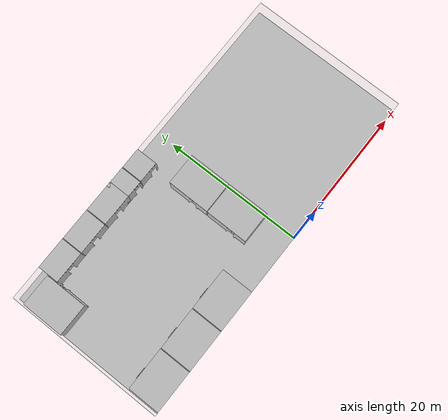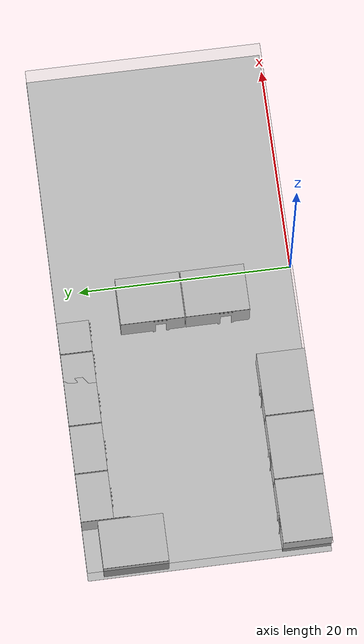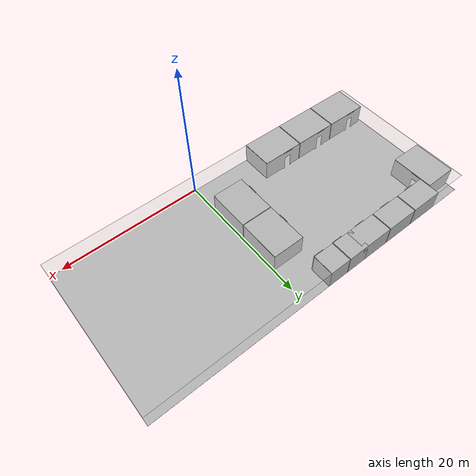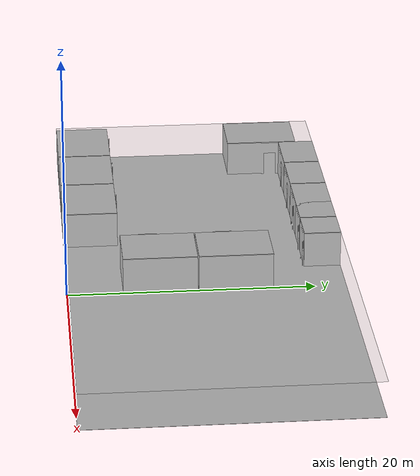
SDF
<sdf version="1.6">
 <world name="default">
  <model name="ceiling">
   <pose>-2.9699999999999998
        11.25
        3.0
        0
        3.141592653589793
        0</pose>
   <static>true</static>
   <link name="link">
    <visual name="visual">
     <geometry><plane><normal>0 0 1</normal><size>49.5 22.5</size></plane></geometry>
     <material>
      <script>
       <uri>file://media/materials/scripts/</uri>
       <uri>file://media/materials/textures/</uri>
       <name>ServiceSim/Ceiling</name>
      </script>
     </material>
    </visual>
   </link>
  </model>
  <model name="floor">
   <pose>-2.9699999999999998
        11.25
        -0.001
        0
        0
        0</pose>
   <static>true</static>
   <link name="link">
    <visual name="visual">
     <geometry><plane><normal>0 0 1</normal><size>49.5 22.5</size></plane></geometry>
     <material>
      <script>
       <uri>file://media/materials/scripts/</uri>
       <uri>file://media/materials/textures/</uri>
       <name>ServiceSim/Hallway</name>
      </script>
     </material>
    </visual>
    <collision name="collision">
     <geometry><plane><normal>0 0 1</normal><size>49.5 22.5</size></plane></geometry>
     <surface><friction><ode><mu>1</mu><mu2>1</mu2></ode></friction></surface>
    </collision>
   </link>
  </model>
  <model name="PrivateMeetingRoomA">
   <static>true</static>
   <pose>-4.6
    7.5
    0
    0
    0
    1.5707963267948966</pose>
   <link name="link">
    <collision name="right_of_door">
     <pose>1.3800000000000001
        0.05
        1.5
        0
        0
        0</pose>
     <geometry><box><size>3.24
            0.1
            3.0</size></box></geometry>
    </collision>
    <collision name="left_of_door">
     <pose>-2.13
        0.05
        1.5
        0
        0
        0</pose>
     <geometry><box><size>1.74
            0.1
            3.0</size></box></geometry>
    </collision>
    <collision name="right">
     <pose>3.05
        -2.25
        1.5
        0
        0
        0</pose>
     <geometry><box><size>0.1
            4.5
            3.0</size></box></geometry>
    </collision>
    <collision name="left">
     <pose>-3.05
        -2.25
        1.5
        0
        0
        0</pose>
     <geometry><box><size>0.1
            4.5
            3.0</size></box></geometry>
    </collision>
    <collision name="back">
     <pose>0.0
        -4.55
        1.5
        0
        0
        0</pose>
     <geometry><box><size>6.0
            0.1
            3.0</size></box></geometry>
    </collision>
    <visual name="visual">
     <geometry>
      <mesh><uri>file://media/meshes/meeting_room_small.obj</uri><scale>0.01 0.01 0.01</scale></mesh>
     </geometry>
    </visual>
    <visual name="floor_-1_-2">
     <pose>-1.5
          -3.0
          0
          0
          0
          0</pose>
     <geometry><mesh><uri>file://media/meshes/carpet.obj</uri><scale>0.01 0.01 0.01</scale></mesh></geometry>
    </visual>
    <visual name="floor_-1_-1">
     <pose>-1.5
          -1.5
          0
          0
          0
          0</pose>
     <geometry><mesh><uri>file://media/meshes/carpet.obj</uri><scale>0.01 0.01 0.01</scale></mesh></geometry>
    </visual>
    <visual name="floor_-1_0">
     <pose>-1.5
          0.0
          0
          0
          0
          0</pose>
     <geometry><mesh><uri>file://media/meshes/carpet.obj</uri><scale>0.01 0.01 0.01</scale></mesh></geometry>
    </visual>
    <visual name="floor_0_-2">
     <pose>0.0
          -3.0
          0
          0
          0
          0</pose>
     <geometry><mesh><uri>file://media/meshes/carpet.obj</uri><scale>0.01 0.01 0.01</scale></mesh></geometry>
    </visual>
    <visual name="floor_0_-1">
     <pose>0.0
          -1.5
          0
          0
          0
          0</pose>
     <geometry><mesh><uri>file://media/meshes/carpet.obj</uri><scale>0.01 0.01 0.01</scale></mesh></geometry>
    </visual>
    <visual name="floor_0_0">
     <geometry><mesh><uri>file://media/meshes/carpet.obj</uri><scale>0.01 0.01 0.01</scale></mesh></geometry>
    </visual>
    <visual name="floor_1_-2">
     <pose>1.5
          -3.0
          0
          0
          0
          0</pose>
     <geometry><mesh><uri>file://media/meshes/carpet.obj</uri><scale>0.01 0.01 0.01</scale></mesh></geometry>
    </visual>
    <visual name="floor_1_-1">
     <pose>1.5
          -1.5
          0
          0
          0
          0</pose>
     <geometry><mesh><uri>file://media/meshes/carpet.obj</uri><scale>0.01 0.01 0.01</scale></mesh></geometry>
    </visual>
    <visual name="floor_1_0">
     <pose>1.5
          0.0
          0
          0
          0
          0</pose>
     <geometry><mesh><uri>file://media/meshes/carpet.obj</uri><scale>0.01 0.01 0.01</scale></mesh></geometry>
    </visual>
    <visual name="floor_2_-2">
     <pose>3.0
          -3.0
          0
          0
          0
          0</pose>
     <geometry><mesh><uri>file://media/meshes/carpet.obj</uri><scale>0.01 0.01 0.01</scale></mesh></geometry>
    </visual>
    <visual name="floor_2_-1">
     <pose>3.0
          -1.5
          0
          0
          0
          0</pose>
     <geometry><mesh><uri>file://media/meshes/carpet.obj</uri><scale>0.01 0.01 0.01</scale></mesh></geometry>
    </visual>
    <visual name="floor_2_0">
     <pose>3.0
          0.0
          0
          0
          0
          0</pose>
     <geometry><mesh><uri>file://media/meshes/carpet.obj</uri><scale>0.01 0.01 0.01</scale></mesh></geometry>
    </visual>
   </link>
  </model>
  <model name="PrivateMeetingRoomB">
   <static>true</static>
   <pose>-4.6
    13.6
    0
    0
    0
    1.5707963267948966</pose>
   <link name="link">
    <collision name="right_of_door">
     <pose>1.3800000000000001
        0.05
        1.5
        0
        0
        0</pose>
     <geometry><box><size>3.24
            0.1
            3.0</size></box></geometry>
    </collision>
    <collision name="left_of_door">
     <pose>-2.13
        0.05
        1.5
        0
        0
        0</pose>
     <geometry><box><size>1.74
            0.1
            3.0</size></box></geometry>
    </collision>
    <collision name="right">
     <pose>3.05
        -2.25
        1.5
        0
        0
        0</pose>
     <geometry><box><size>0.1
            4.5
            3.0</size></box></geometry>
    </collision>
    <collision name="left">
     <pose>-3.05
        -2.25
        1.5
        0
        0
        0</pose>
     <geometry><box><size>0.1
            4.5
            3.0</size></box></geometry>
    </collision>
    <collision name="back">
     <pose>0.0
        -4.55
        1.5
        0
        0
        0</pose>
     <geometry><box><size>6.0
            0.1
            3.0</size></box></geometry>
    </collision>
    <visual name="visual">
     <geometry>
      <mesh><uri>file://media/meshes/meeting_room_small.obj</uri><scale>0.01 0.01 0.01</scale></mesh>
     </geometry>
    </visual>
    <visual name="floor_-1_-2">
     <pose>-1.5
          -3.0
          0
          0
          0
          0</pose>
     <geometry><mesh><uri>file://media/meshes/carpet.obj</uri><scale>0.01 0.01 0.01</scale></mesh></geometry>
    </visual>
    <visual name="floor_-1_-1">
     <pose>-1.5
          -1.5
          0
          0
          0
          0</pose>
     <geometry><mesh><uri>file://media/meshes/carpet.obj</uri><scale>0.01 0.01 0.01</scale></mesh></geometry>
    </visual>
    <visual name="floor_-1_0">
     <pose>-1.5
          0.0
          0
          0
          0
          0</pose>
     <geometry><mesh><uri>file://media/meshes/carpet.obj</uri><scale>0.01 0.01 0.01</scale></mesh></geometry>
    </visual>
    <visual name="floor_0_-2">
     <pose>0.0
          -3.0
          0
          0
          0
          0</pose>
     <geometry><mesh><uri>file://media/meshes/carpet.obj</uri><scale>0.01 0.01 0.01</scale></mesh></geometry>
    </visual>
    <visual name="floor_0_-1">
     <pose>0.0
          -1.5
          0
          0
          0
          0</pose>
     <geometry><mesh><uri>file://media/meshes/carpet.obj</uri><scale>0.01 0.01 0.01</scale></mesh></geometry>
    </visual>
    <visual name="floor_0_0">
     <geometry><mesh><uri>file://media/meshes/carpet.obj</uri><scale>0.01 0.01 0.01</scale></mesh></geometry>
    </visual>
    <visual name="floor_1_-2">
     <pose>1.5
          -3.0
          0
          0
          0
          0</pose>
     <geometry><mesh><uri>file://media/meshes/carpet.obj</uri><scale>0.01 0.01 0.01</scale></mesh></geometry>
    </visual>
    <visual name="floor_1_-1">
     <pose>1.5
          -1.5
          0
          0
          0
          0</pose>
     <geometry><mesh><uri>file://media/meshes/carpet.obj</uri><scale>0.01 0.01 0.01</scale></mesh></geometry>
    </visual>
    <visual name="floor_1_0">
     <pose>1.5
          0.0
          0
          0
          0
          0</pose>
     <geometry><mesh><uri>file://media/meshes/carpet.obj</uri><scale>0.01 0.01 0.01</scale></mesh></geometry>
    </visual>
    <visual name="floor_2_-2">
     <pose>3.0
          -3.0
          0
          0
          0
          0</pose>
     <geometry><mesh><uri>file://media/meshes/carpet.obj</uri><scale>0.01 0.01 0.01</scale></mesh></geometry>
    </visual>
    <visual name="floor_2_-1">
     <pose>3.0
          -1.5
          0
          0
          0
          0</pose>
     <geometry><mesh><uri>file://media/meshes/carpet.obj</uri><scale>0.01 0.01 0.01</scale></mesh></geometry>
    </visual>
    <visual name="floor_2_0">
     <pose>3.0
          0.0
          0
          0
          0
          0</pose>
     <geometry><mesh><uri>file://media/meshes/carpet.obj</uri><scale>0.01 0.01 0.01</scale></mesh></geometry>
    </visual>
   </link>
  </model>
  <model name="PrivateBathroomA">
   <static>true</static>
   <pose>-4.5
    19.5
    0
    0
    0
    3.141592653589793</pose>
   <link name="link">
    <collision name="right_of_door">
     <pose>0.63
        0.05
        1.5
        0
        0
        0</pose>
     <geometry><box><size>1.74
            0.1
            3.0</size></box></geometry>
    </collision>
    <collision name="left_of_door">
     <pose>-1.3800000000000001
        0.05
        1.5
        0
        0
        0</pose>
     <geometry><box><size>0.24
            0.1
            3.0</size></box></geometry>
    </collision>
    <collision name="right">
     <pose>1.55
        -1.5
        1.5
        0
        0
        0</pose>
     <geometry><box><size>0.1
            3.0
            3.0</size></box></geometry>
    </collision>
    <collision name="left">
     <pose>-1.55
        -1.5
        1.5
        0
        0
        0</pose>
     <geometry><box><size>0.1
            3.0
            3.0</size></box></geometry>
    </collision>
    <collision name="back">
     <pose>0.0
        -3.05
        1.5
        0
        0
        0</pose>
     <geometry><box><size>3.0
            0.1
            3.0</size></box></geometry>
    </collision>
    <visual name="visual">
     <geometry><mesh><uri>file://media/meshes/bathroom.obj</uri><scale>0.01 0.01 0.01</scale></mesh></geometry>
    </visual>
    <visual name="floor_0_-1">
     <pose>0.0
          -1.5
          0
          0
          0
          0</pose>
     <geometry><mesh><uri>file://media/meshes/tile.obj</uri><scale>0.01 0.01 0.01</scale></mesh></geometry>
    </visual>
    <visual name="floor_0_0">
     <geometry><mesh><uri>file://media/meshes/tile.obj</uri><scale>0.01 0.01 0.01</scale></mesh></geometry>
    </visual>
    <visual name="floor_1_-1">
     <pose>1.5
          -1.5
          0
          0
          0
          0</pose>
     <geometry><mesh><uri>file://media/meshes/tile.obj</uri><scale>0.01 0.01 0.01</scale></mesh></geometry>
    </visual>
    <visual name="floor_1_0">
     <pose>1.5
          0.0
          0
          0
          0
          0</pose>
     <geometry><mesh><uri>file://media/meshes/tile.obj</uri><scale>0.01 0.01 0.01</scale></mesh></geometry>
    </visual>
   </link>
  </model>
  <model name="PrivateBathroomB">
   <static>true</static>
   <pose>-7.6
    19.5
    0
    0
    0
    3.141592653589793</pose>
   <link name="link">
    <collision name="right_of_door">
     <pose>0.63
        0.05
        1.5
        0
        0
        0</pose>
     <geometry><box><size>1.74
            0.1
            3.0</size></box></geometry>
    </collision>
    <collision name="left_of_door">
     <pose>-1.3800000000000001
        0.05
        1.5
        0
        0
        0</pose>
     <geometry><box><size>0.24
            0.1
            3.0</size></box></geometry>
    </collision>
    <collision name="right">
     <pose>1.55
        -1.5
        1.5
        0
        0
        0</pose>
     <geometry><box><size>0.1
            3.0
            3.0</size></box></geometry>
    </collision>
    <collision name="left">
     <pose>-1.55
        -1.5
        1.5
        0
        0
        0</pose>
     <geometry><box><size>0.1
            3.0
            3.0</size></box></geometry>
    </collision>
    <collision name="back">
     <pose>0.0
        -3.05
        1.5
        0
        0
        0</pose>
     <geometry><box><size>3.0
            0.1
            3.0</size></box></geometry>
    </collision>
    <visual name="visual">
     <geometry><mesh><uri>file://media/meshes/bathroom.obj</uri><scale>0.01 0.01 0.01</scale></mesh></geometry>
    </visual>
    <visual name="floor_0_-1">
     <pose>0.0
          -1.5
          0
          0
          0
          0</pose>
     <geometry><mesh><uri>file://media/meshes/tile.obj</uri><scale>0.01 0.01 0.01</scale></mesh></geometry>
    </visual>
    <visual name="floor_0_0">
     <geometry><mesh><uri>file://media/meshes/tile.obj</uri><scale>0.01 0.01 0.01</scale></mesh></geometry>
    </visual>
    <visual name="floor_1_-1">
     <pose>1.5
          -1.5
          0
          0
          0
          0</pose>
     <geometry><mesh><uri>file://media/meshes/tile.obj</uri><scale>0.01 0.01 0.01</scale></mesh></geometry>
    </visual>
    <visual name="floor_1_0">
     <pose>1.5
          0.0
          0
          0
          0
          0</pose>
     <geometry><mesh><uri>file://media/meshes/tile.obj</uri><scale>0.01 0.01 0.01</scale></mesh></geometry>
    </visual>
   </link>
  </model>
  <model name="PrivateOfficeA">
   <static>true</static>
   <pose>-12.2
    19.5
    0
    0
    0
    3.141592653589793</pose>
   <link name="link">
    <collision name="right_of_door">
     <pose>0.63
        0.05
        1.5
        0
        0
        0</pose>
     <geometry><box><size>1.74
            0.1
            3.0</size></box></geometry>
    </collision>
    <collision name="left_of_door">
     <pose>-2.13
        0.05
        1.5
        0
        0
        0</pose>
     <geometry><box><size>1.74
            0.1
            3.0</size></box></geometry>
    </collision>
    <collision name="right">
     <pose>1.55
        -1.5
        1.5
        0
        0
        0</pose>
     <geometry><box><size>0.1
            3.0
            3.0</size></box></geometry>
    </collision>
    <collision name="left">
     <pose>-3.05
        -1.5
        1.5
        0
        0
        0</pose>
     <geometry><box><size>0.1
            3.0
            3.0</size></box></geometry>
    </collision>
    <collision name="back">
     <pose>-0.75
        -3.05
        1.5
        0
        0
        0</pose>
     <geometry><box><size>4.5
            0.1
            3.0</size></box></geometry>
    </collision>
    <visual name="visual">
     <geometry><mesh><uri>file://media/meshes/office_small.obj</uri><scale>0.01 0.01 0.01</scale></mesh></geometry>
    </visual>
    <visual name="floor_-1_-1">
     <pose>-1.5
          -1.5
          0
          0
          0
          0</pose>
     <geometry><mesh><uri>file://media/meshes/carpet.obj</uri><scale>0.01 0.01 0.01</scale></mesh></geometry>
    </visual>
    <visual name="floor_-1_0">
     <pose>-1.5
          0.0
          0
          0
          0
          0</pose>
     <geometry><mesh><uri>file://media/meshes/carpet.obj</uri><scale>0.01 0.01 0.01</scale></mesh></geometry>
    </visual>
    <visual name="floor_0_-1">
     <pose>0.0
          -1.5
          0
          0
          0
          0</pose>
     <geometry><mesh><uri>file://media/meshes/carpet.obj</uri><scale>0.01 0.01 0.01</scale></mesh></geometry>
    </visual>
    <visual name="floor_0_0">
     <geometry><mesh><uri>file://media/meshes/carpet.obj</uri><scale>0.01 0.01 0.01</scale></mesh></geometry>
    </visual>
    <visual name="floor_1_-1">
     <pose>1.5
          -1.5
          0
          0
          0
          0</pose>
     <geometry><mesh><uri>file://media/meshes/carpet.obj</uri><scale>0.01 0.01 0.01</scale></mesh></geometry>
    </visual>
    <visual name="floor_1_0">
     <pose>1.5
          0.0
          0
          0
          0
          0</pose>
     <geometry><mesh><uri>file://media/meshes/carpet.obj</uri><scale>0.01 0.01 0.01</scale></mesh></geometry>
    </visual>
   </link>
  </model>
  <model name="PrivateOfficeB">
   <static>true</static>
   <pose>-16.8
    19.5
    0
    0
    0
    3.141592653589793</pose>
   <link name="link">
    <collision name="right_of_door">
     <pose>0.63
        0.05
        1.5
        0
        0
        0</pose>
     <geometry><box><size>1.74
            0.1
            3.0</size></box></geometry>
    </collision>
    <collision name="left_of_door">
     <pose>-2.13
        0.05
        1.5
        0
        0
        0</pose>
     <geometry><box><size>1.74
            0.1
            3.0</size></box></geometry>
    </collision>
    <collision name="right">
     <pose>1.55
        -1.5
        1.5
        0
        0
        0</pose>
     <geometry><box><size>0.1
            3.0
            3.0</size></box></geometry>
    </collision>
    <collision name="left">
     <pose>-3.05
        -1.5
        1.5
        0
        0
        0</pose>
     <geometry><box><size>0.1
            3.0
            3.0</size></box></geometry>
    </collision>
    <collision name="back">
     <pose>-0.75
        -3.05
        1.5
        0
        0
        0</pose>
     <geometry><box><size>4.5
            0.1
            3.0</size></box></geometry>
    </collision>
    <visual name="visual">
     <geometry><mesh><uri>file://media/meshes/office_small.obj</uri><scale>0.01 0.01 0.01</scale></mesh></geometry>
    </visual>
    <visual name="floor_-1_-1">
     <pose>-1.5
          -1.5
          0
          0
          0
          0</pose>
     <geometry><mesh><uri>file://media/meshes/carpet.obj</uri><scale>0.01 0.01 0.01</scale></mesh></geometry>
    </visual>
    <visual name="floor_-1_0">
     <pose>-1.5
          0.0
          0
          0
          0
          0</pose>
     <geometry><mesh><uri>file://media/meshes/carpet.obj</uri><scale>0.01 0.01 0.01</scale></mesh></geometry>
    </visual>
    <visual name="floor_0_-1">
     <pose>0.0
          -1.5
          0
          0
          0
          0</pose>
     <geometry><mesh><uri>file://media/meshes/carpet.obj</uri><scale>0.01 0.01 0.01</scale></mesh></geometry>
    </visual>
    <visual name="floor_0_0">
     <geometry><mesh><uri>file://media/meshes/carpet.obj</uri><scale>0.01 0.01 0.01</scale></mesh></geometry>
    </visual>
    <visual name="floor_1_-1">
     <pose>1.5
          -1.5
          0
          0
          0
          0</pose>
     <geometry><mesh><uri>file://media/meshes/carpet.obj</uri><scale>0.01 0.01 0.01</scale></mesh></geometry>
    </visual>
    <visual name="floor_1_0">
     <pose>1.5
          0.0
          0
          0
          0
          0</pose>
     <geometry><mesh><uri>file://media/meshes/carpet.obj</uri><scale>0.01 0.01 0.01</scale></mesh></geometry>
    </visual>
   </link>
  </model>
  <model name="PrivateOfficeC">
   <static>true</static>
   <pose>-21.4
    19.5
    0
    0
    0
    3.141592653589793</pose>
   <link name="link">
    <collision name="right_of_door">
     <pose>0.63
        0.05
        1.5
        0
        0
        0</pose>
     <geometry><box><size>1.74
            0.1
            3.0</size></box></geometry>
    </collision>
    <collision name="left_of_door">
     <pose>-2.13
        0.05
        1.5
        0
        0
        0</pose>
     <geometry><box><size>1.74
            0.1
            3.0</size></box></geometry>
    </collision>
    <collision name="right">
     <pose>1.55
        -1.5
        1.5
        0
        0
        0</pose>
     <geometry><box><size>0.1
            3.0
            3.0</size></box></geometry>
    </collision>
    <collision name="left">
     <pose>-3.05
        -1.5
        1.5
        0
        0
        0</pose>
     <geometry><box><size>0.1
            3.0
            3.0</size></box></geometry>
    </collision>
    <collision name="back">
     <pose>-0.75
        -3.05
        1.5
        0
        0
        0</pose>
     <geometry><box><size>4.5
            0.1
            3.0</size></box></geometry>
    </collision>
    <visual name="visual">
     <geometry><mesh><uri>file://media/meshes/office_small.obj</uri><scale>0.01 0.01 0.01</scale></mesh></geometry>
    </visual>
    <visual name="floor_-1_-1">
     <pose>-1.5
          -1.5
          0
          0
          0
          0</pose>
     <geometry><mesh><uri>file://media/meshes/carpet.obj</uri><scale>0.01 0.01 0.01</scale></mesh></geometry>
    </visual>
    <visual name="floor_-1_0">
     <pose>-1.5
          0.0
          0
          0
          0
          0</pose>
     <geometry><mesh><uri>file://media/meshes/carpet.obj</uri><scale>0.01 0.01 0.01</scale></mesh></geometry>
    </visual>
    <visual name="floor_0_-1">
     <pose>0.0
          -1.5
          0
          0
          0
          0</pose>
     <geometry><mesh><uri>file://media/meshes/carpet.obj</uri><scale>0.01 0.01 0.01</scale></mesh></geometry>
    </visual>
    <visual name="floor_0_0">
     <geometry><mesh><uri>file://media/meshes/carpet.obj</uri><scale>0.01 0.01 0.01</scale></mesh></geometry>
    </visual>
    <visual name="floor_1_-1">
     <pose>1.5
          -1.5
          0
          0
          0
          0</pose>
     <geometry><mesh><uri>file://media/meshes/carpet.obj</uri><scale>0.01 0.01 0.01</scale></mesh></geometry>
    </visual>
    <visual name="floor_1_0">
     <pose>1.5
          0.0
          0
          0
          0
          0</pose>
     <geometry><mesh><uri>file://media/meshes/carpet.obj</uri><scale>0.01 0.01 0.01</scale></mesh></geometry>
    </visual>
   </link>
  </model>
  <model name="PrivateOfficeD">
   <static>true</static>
   <pose>-23.0
    18.0
    0
    0
    0
    -1.5707963267948966</pose>
   <link name="link">
    <collision name="right_of_door">
     <pose>1.3800000000000001
        0.05
        1.5
        0
        0
        0</pose>
     <geometry><box><size>3.24
            0.1
            3.0</size></box></geometry>
    </collision>
    <collision name="left_of_door">
     <pose>-2.13
        0.05
        1.5
        0
        0
        0</pose>
     <geometry><box><size>1.74
            0.1
            3.0</size></box></geometry>
    </collision>
    <collision name="right">
     <pose>3.05
        -2.25
        1.5
        0
        0
        0</pose>
     <geometry><box><size>0.1
            4.5
            3.0</size></box></geometry>
    </collision>
    <collision name="left">
     <pose>-3.05
        -2.25
        1.5
        0
        0
        0</pose>
     <geometry><box><size>0.1
            4.5
            3.0</size></box></geometry>
    </collision>
    <collision name="back">
     <pose>0.0
        -4.55
        1.5
        0
        0
        0</pose>
     <geometry><box><size>6.0
            0.1
            3.0</size></box></geometry>
    </collision>
    <visual name="visual">
     <geometry><mesh><uri>file://media/meshes/office_large.obj</uri><scale>0.01 0.01 0.01</scale></mesh></geometry>
    </visual>
    <visual name="floor_-1_-2">
     <pose>-1.5
          -3.0
          0
          0
          0
          0</pose>
     <geometry><mesh><uri>file://media/meshes/carpet.obj</uri><scale>0.01 0.01 0.01</scale></mesh></geometry>
    </visual>
    <visual name="floor_-1_-1">
     <pose>-1.5
          -1.5
          0
          0
          0
          0</pose>
     <geometry><mesh><uri>file://media/meshes/carpet.obj</uri><scale>0.01 0.01 0.01</scale></mesh></geometry>
    </visual>
    <visual name="floor_-1_0">
     <pose>-1.5
          0.0
          0
          0
          0
          0</pose>
     <geometry><mesh><uri>file://media/meshes/carpet.obj</uri><scale>0.01 0.01 0.01</scale></mesh></geometry>
    </visual>
    <visual name="floor_0_-2">
     <pose>0.0
          -3.0
          0
          0
          0
          0</pose>
     <geometry><mesh><uri>file://media/meshes/carpet.obj</uri><scale>0.01 0.01 0.01</scale></mesh></geometry>
    </visual>
    <visual name="floor_0_-1">
     <pose>0.0
          -1.5
          0
          0
          0
          0</pose>
     <geometry><mesh><uri>file://media/meshes/carpet.obj</uri><scale>0.01 0.01 0.01</scale></mesh></geometry>
    </visual>
    <visual name="floor_0_0">
     <geometry><mesh><uri>file://media/meshes/carpet.obj</uri><scale>0.01 0.01 0.01</scale></mesh></geometry>
    </visual>
    <visual name="floor_1_-2">
     <pose>1.5
          -3.0
          0
          0
          0
          0</pose>
     <geometry><mesh><uri>file://media/meshes/carpet.obj</uri><scale>0.01 0.01 0.01</scale></mesh></geometry>
    </visual>
    <visual name="floor_1_-1">
     <pose>1.5
          -1.5
          0
          0
          0
          0</pose>
     <geometry><mesh><uri>file://media/meshes/carpet.obj</uri><scale>0.01 0.01 0.01</scale></mesh></geometry>
    </visual>
    <visual name="floor_1_0">
     <pose>1.5
          0.0
          0
          0
          0
          0</pose>
     <geometry><mesh><uri>file://media/meshes/carpet.obj</uri><scale>0.01 0.01 0.01</scale></mesh></geometry>
    </visual>
    <visual name="floor_2_-2">
     <pose>3.0
          -3.0
          0
          0
          0
          0</pose>
     <geometry><mesh><uri>file://media/meshes/carpet.obj</uri><scale>0.01 0.01 0.01</scale></mesh></geometry>
    </visual>
    <visual name="floor_2_-1">
     <pose>3.0
          -1.5
          0
          0
          0
          0</pose>
     <geometry><mesh><uri>file://media/meshes/carpet.obj</uri><scale>0.01 0.01 0.01</scale></mesh></geometry>
    </visual>
    <visual name="floor_2_0">
     <pose>3.0
          0.0
          0
          0
          0
          0</pose>
     <geometry><mesh><uri>file://media/meshes/carpet.obj</uri><scale>0.01 0.01 0.01</scale></mesh></geometry>
    </visual>
   </link>
  </model>
  <model name="PrivateMeetingRoomC">
   <static>true</static>
   <pose>-12.0
    4.5
    0
    0
    0
    0</pose>
   <link name="link">
    <collision name="right_of_door">
     <pose>1.3800000000000001
        0.05
        1.5
        0
        0
        0</pose>
     <geometry><box><size>3.24
            0.1
            3.0</size></box></geometry>
    </collision>
    <collision name="left_of_door">
     <pose>-2.13
        0.05
        1.5
        0
        0
        0</pose>
     <geometry><box><size>1.74
            0.1
            3.0</size></box></geometry>
    </collision>
    <collision name="right">
     <pose>3.05
        -2.25
        1.5
        0
        0
        0</pose>
     <geometry><box><size>0.1
            4.5
            3.0</size></box></geometry>
    </collision>
    <collision name="left">
     <pose>-3.05
        -2.25
        1.5
        0
        0
        0</pose>
     <geometry><box><size>0.1
            4.5
            3.0</size></box></geometry>
    </collision>
    <collision name="back">
     <pose>0.0
        -4.55
        1.5
        0
        0
        0</pose>
     <geometry><box><size>6.0
            0.1
            3.0</size></box></geometry>
    </collision>
    <visual name="visual">
     <geometry>
      <mesh><uri>file://media/meshes/meeting_room_small.obj</uri><scale>0.01 0.01 0.01</scale></mesh>
     </geometry>
    </visual>
    <visual name="floor_-1_-2">
     <pose>-1.5
          -3.0
          0
          0
          0
          0</pose>
     <geometry><mesh><uri>file://media/meshes/carpet.obj</uri><scale>0.01 0.01 0.01</scale></mesh></geometry>
    </visual>
    <visual name="floor_-1_-1">
     <pose>-1.5
          -1.5
          0
          0
          0
          0</pose>
     <geometry><mesh><uri>file://media/meshes/carpet.obj</uri><scale>0.01 0.01 0.01</scale></mesh></geometry>
    </visual>
    <visual name="floor_-1_0">
     <pose>-1.5
          0.0
          0
          0
          0
          0</pose>
     <geometry><mesh><uri>file://media/meshes/carpet.obj</uri><scale>0.01 0.01 0.01</scale></mesh></geometry>
    </visual>
    <visual name="floor_0_-2">
     <pose>0.0
          -3.0
          0
          0
          0
          0</pose>
     <geometry><mesh><uri>file://media/meshes/carpet.obj</uri><scale>0.01 0.01 0.01</scale></mesh></geometry>
    </visual>
    <visual name="floor_0_-1">
     <pose>0.0
          -1.5
          0
          0
          0
          0</pose>
     <geometry><mesh><uri>file://media/meshes/carpet.obj</uri><scale>0.01 0.01 0.01</scale></mesh></geometry>
    </visual>
    <visual name="floor_0_0">
     <geometry><mesh><uri>file://media/meshes/carpet.obj</uri><scale>0.01 0.01 0.01</scale></mesh></geometry>
    </visual>
    <visual name="floor_1_-2">
     <pose>1.5
          -3.0
          0
          0
          0
          0</pose>
     <geometry><mesh><uri>file://media/meshes/carpet.obj</uri><scale>0.01 0.01 0.01</scale></mesh></geometry>
    </visual>
    <visual name="floor_1_-1">
     <pose>1.5
          -1.5
          0
          0
          0
          0</pose>
     <geometry><mesh><uri>file://media/meshes/carpet.obj</uri><scale>0.01 0.01 0.01</scale></mesh></geometry>
    </visual>
    <visual name="floor_1_0">
     <pose>1.5
          0.0
          0
          0
          0
          0</pose>
     <geometry><mesh><uri>file://media/meshes/carpet.obj</uri><scale>0.01 0.01 0.01</scale></mesh></geometry>
    </visual>
    <visual name="floor_2_-2">
     <pose>3.0
          -3.0
          0
          0
          0
          0</pose>
     <geometry><mesh><uri>file://media/meshes/carpet.obj</uri><scale>0.01 0.01 0.01</scale></mesh></geometry>
    </visual>
    <visual name="floor_2_-1">
     <pose>3.0
          -1.5
          0
          0
          0
          0</pose>
     <geometry><mesh><uri>file://media/meshes/carpet.obj</uri><scale>0.01 0.01 0.01</scale></mesh></geometry>
    </visual>
    <visual name="floor_2_0">
     <pose>3.0
          0.0
          0
          0
          0
          0</pose>
     <geometry><mesh><uri>file://media/meshes/carpet.obj</uri><scale>0.01 0.01 0.01</scale></mesh></geometry>
    </visual>
   </link>
  </model>
  <model name="PrivateMeetingRoomD">
   <static>true</static>
   <pose>-18.1
    4.5
    0
    0
    0
    0</pose>
   <link name="link">
    <collision name="right_of_door">
     <pose>1.3800000000000001
        0.05
        1.5
        0
        0
        0</pose>
     <geometry><box><size>3.24
            0.1
            3.0</size></box></geometry>
    </collision>
    <collision name="left_of_door">
     <pose>-2.13
        0.05
        1.5
        0
        0
        0</pose>
     <geometry><box><size>1.74
            0.1
            3.0</size></box></geometry>
    </collision>
    <collision name="right">
     <pose>3.05
        -2.25
        1.5
        0
        0
        0</pose>
     <geometry><box><size>0.1
            4.5
            3.0</size></box></geometry>
    </collision>
    <collision name="left">
     <pose>-3.05
        -2.25
        1.5
        0
        0
        0</pose>
     <geometry><box><size>0.1
            4.5
            3.0</size></box></geometry>
    </collision>
    <collision name="back">
     <pose>0.0
        -4.55
        1.5
        0
        0
        0</pose>
     <geometry><box><size>6.0
            0.1
            3.0</size></box></geometry>
    </collision>
    <visual name="visual">
     <geometry>
      <mesh><uri>file://media/meshes/meeting_room_small.obj</uri><scale>0.01 0.01 0.01</scale></mesh>
     </geometry>
    </visual>
    <visual name="floor_-1_-2">
     <pose>-1.5
          -3.0
          0
          0
          0
          0</pose>
     <geometry><mesh><uri>file://media/meshes/carpet.obj</uri><scale>0.01 0.01 0.01</scale></mesh></geometry>
    </visual>
    <visual name="floor_-1_-1">
     <pose>-1.5
          -1.5
          0
          0
          0
          0</pose>
     <geometry><mesh><uri>file://media/meshes/carpet.obj</uri><scale>0.01 0.01 0.01</scale></mesh></geometry>
    </visual>
    <visual name="floor_-1_0">
     <pose>-1.5
          0.0
          0
          0
          0
          0</pose>
     <geometry><mesh><uri>file://media/meshes/carpet.obj</uri><scale>0.01 0.01 0.01</scale></mesh></geometry>
    </visual>
    <visual name="floor_0_-2">
     <pose>0.0
          -3.0
          0
          0
          0
          0</pose>
     <geometry><mesh><uri>file://media/meshes/carpet.obj</uri><scale>0.01 0.01 0.01</scale></mesh></geometry>
    </visual>
    <visual name="floor_0_-1">
     <pose>0.0
          -1.5
          0
          0
          0
          0</pose>
     <geometry><mesh><uri>file://media/meshes/carpet.obj</uri><scale>0.01 0.01 0.01</scale></mesh></geometry>
    </visual>
    <visual name="floor_0_0">
     <geometry><mesh><uri>file://media/meshes/carpet.obj</uri><scale>0.01 0.01 0.01</scale></mesh></geometry>
    </visual>
    <visual name="floor_1_-2">
     <pose>1.5
          -3.0
          0
          0
          0
          0</pose>
     <geometry><mesh><uri>file://media/meshes/carpet.obj</uri><scale>0.01 0.01 0.01</scale></mesh></geometry>
    </visual>
    <visual name="floor_1_-1">
     <pose>1.5
          -1.5
          0
          0
          0
          0</pose>
     <geometry><mesh><uri>file://media/meshes/carpet.obj</uri><scale>0.01 0.01 0.01</scale></mesh></geometry>
    </visual>
    <visual name="floor_1_0">
     <pose>1.5
          0.0
          0
          0
          0
          0</pose>
     <geometry><mesh><uri>file://media/meshes/carpet.obj</uri><scale>0.01 0.01 0.01</scale></mesh></geometry>
    </visual>
    <visual name="floor_2_-2">
     <pose>3.0
          -3.0
          0
          0
          0
          0</pose>
     <geometry><mesh><uri>file://media/meshes/carpet.obj</uri><scale>0.01 0.01 0.01</scale></mesh></geometry>
    </visual>
    <visual name="floor_2_-1">
     <pose>3.0
          -1.5
          0
          0
          0
          0</pose>
     <geometry><mesh><uri>file://media/meshes/carpet.obj</uri><scale>0.01 0.01 0.01</scale></mesh></geometry>
    </visual>
    <visual name="floor_2_0">
     <pose>3.0
          0.0
          0
          0
          0
          0</pose>
     <geometry><mesh><uri>file://media/meshes/carpet.obj</uri><scale>0.01 0.01 0.01</scale></mesh></geometry>
    </visual>
   </link>
  </model>
  <model name="PrivateMeetingRoomE">
   <static>true</static>
   <pose>-24.2
    4.5
    0
    0
    0
    0</pose>
   <link name="link">
    <collision name="right_of_door">
     <pose>1.3800000000000001
        0.05
        1.5
        0
        0
        0</pose>
     <geometry><box><size>3.24
            0.1
            3.0</size></box></geometry>
    </collision>
    <collision name="left_of_door">
     <pose>-2.13
        0.05
        1.5
        0
        0
        0</pose>
     <geometry><box><size>1.74
            0.1
            3.0</size></box></geometry>
    </collision>
    <collision name="right">
     <pose>3.05
        -2.25
        1.5
        0
        0
        0</pose>
     <geometry><box><size>0.1
            4.5
            3.0</size></box></geometry>
    </collision>
    <collision name="left">
     <pose>-3.05
        -2.25
        1.5
        0
        0
        0</pose>
     <geometry><box><size>0.1
            4.5
            3.0</size></box></geometry>
    </collision>
    <collision name="back">
     <pose>0.0
        -4.55
        1.5
        0
        0
        0</pose>
     <geometry><box><size>6.0
            0.1
            3.0</size></box></geometry>
    </collision>
    <visual name="visual">
     <geometry>
      <mesh><uri>file://media/meshes/meeting_room_small.obj</uri><scale>0.01 0.01 0.01</scale></mesh>
     </geometry>
    </visual>
    <visual name="floor_-1_-2">
     <pose>-1.5
          -3.0
          0
          0
          0
          0</pose>
     <geometry><mesh><uri>file://media/meshes/carpet.obj</uri><scale>0.01 0.01 0.01</scale></mesh></geometry>
    </visual>
    <visual name="floor_-1_-1">
     <pose>-1.5
          -1.5
          0
          0
          0
          0</pose>
     <geometry><mesh><uri>file://media/meshes/carpet.obj</uri><scale>0.01 0.01 0.01</scale></mesh></geometry>
    </visual>
    <visual name="floor_-1_0">
     <pose>-1.5
          0.0
          0
          0
          0
          0</pose>
     <geometry><mesh><uri>file://media/meshes/carpet.obj</uri><scale>0.01 0.01 0.01</scale></mesh></geometry>
    </visual>
    <visual name="floor_0_-2">
     <pose>0.0
          -3.0
          0
          0
          0
          0</pose>
     <geometry><mesh><uri>file://media/meshes/carpet.obj</uri><scale>0.01 0.01 0.01</scale></mesh></geometry>
    </visual>
    <visual name="floor_0_-1">
     <pose>0.0
          -1.5
          0
          0
          0
          0</pose>
     <geometry><mesh><uri>file://media/meshes/carpet.obj</uri><scale>0.01 0.01 0.01</scale></mesh></geometry>
    </visual>
    <visual name="floor_0_0">
     <geometry><mesh><uri>file://media/meshes/carpet.obj</uri><scale>0.01 0.01 0.01</scale></mesh></geometry>
    </visual>
    <visual name="floor_1_-2">
     <pose>1.5
          -3.0
          0
          0
          0
          0</pose>
     <geometry><mesh><uri>file://media/meshes/carpet.obj</uri><scale>0.01 0.01 0.01</scale></mesh></geometry>
    </visual>
    <visual name="floor_1_-1">
     <pose>1.5
          -1.5
          0
          0
          0
          0</pose>
     <geometry><mesh><uri>file://media/meshes/carpet.obj</uri><scale>0.01 0.01 0.01</scale></mesh></geometry>
    </visual>
    <visual name="floor_1_0">
     <pose>1.5
          0.0
          0
          0
          0
          0</pose>
     <geometry><mesh><uri>file://media/meshes/carpet.obj</uri><scale>0.01 0.01 0.01</scale></mesh></geometry>
    </visual>
    <visual name="floor_2_-2">
     <pose>3.0
          -3.0
          0
          0
          0
          0</pose>
     <geometry><mesh><uri>file://media/meshes/carpet.obj</uri><scale>0.01 0.01 0.01</scale></mesh></geometry>
    </visual>
    <visual name="floor_2_-1">
     <pose>3.0
          -1.5
          0
          0
          0
          0</pose>
     <geometry><mesh><uri>file://media/meshes/carpet.obj</uri><scale>0.01 0.01 0.01</scale></mesh></geometry>
    </visual>
    <visual name="floor_2_0">
     <pose>3.0
          0.0
          0
          0
          0
          0</pose>
     <geometry><mesh><uri>file://media/meshes/carpet.obj</uri><scale>0.01 0.01 0.01</scale></mesh></geometry>
    </visual>
   </link>
  </model>
 </world>
</sdf>
